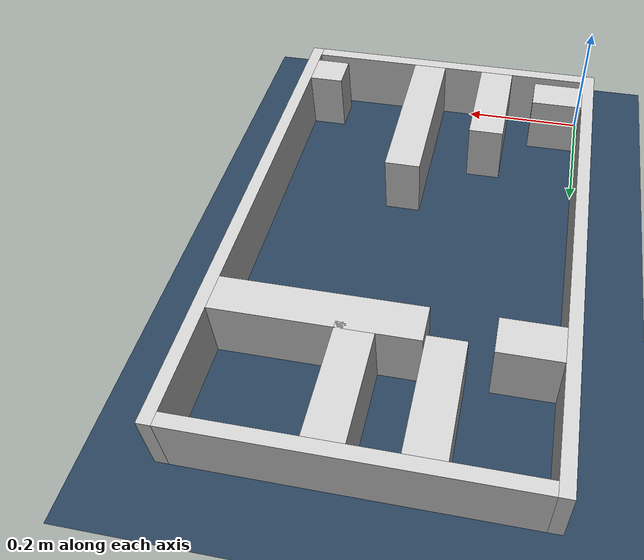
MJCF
<?xml version="1.0" ?>
<mujoco model="generated_real_template">
  <compiler angle="degree"/>
  <option timestep="0.002" integrator="implicitfast" iterations="100" cone="elliptic"/>
  <default>
    <geom density="1"/>
  </default>
  <asset>
    <texture builtin="gradient" height="3072" rgb1="0.3 0.5 0.7" rgb2="0 0 0" type="skybox" width="512"/>
    <texture builtin="checker" height="300" mark="edge" markrgb="0.8 0.8 0.8" name="groundplane" rgb1="0.2 0.3 0.4" rgb2="0.1 0.2 0.3" type="2d" width="300"/>
    <material name="groundplane" reflectance="0.2" texrepeat="5 5" texture="groundplane" texuniform="true"/>
  </asset>
  <worldbody>
    <light dir="0 0 -1" directional="true" pos="0 0 1.5"/>
    <geom name="floor" type="plane" condim="4" friction="0.5 0.005 0.001" material="groundplane" size="0 0 0.05"/>
    <body name="walls">
      <geom name="wall_boundary_left" type="box" condim="4" friction="1.0 0.005 0.0001" rgba="0.8 0.8 0.8 1" pos="-0.010000 0.387500 0.050000" euler="0 0 0.000000" size="0.010000 0.407500 0.050000"/>
      <geom name="wall_boundary_right" type="box" condim="4" friction="1.0 0.005 0.0001" rgba="0.8 0.8 0.8 1" pos="0.500000 0.387500 0.050000" euler="0 0 0.000000" size="0.010000 0.407500 0.050000"/>
      <geom name="wall_boundary_bottom" type="box" condim="4" friction="1.0 0.005 0.0001" rgba="0.8 0.8 0.8 1" pos="0.245000 -0.010000 0.050000" euler="0 0 0.000000" size="0.245000 0.010000 0.050000"/>
      <geom name="wall_boundary_top" type="box" condim="4" friction="1.0 0.005 0.0001" rgba="0.8 0.8 0.8 1" pos="0.245000 0.785000 0.050000" euler="0 0 0.000000" size="0.245000 0.010000 0.050000"/>
      <geom name="wall_inner_1_1" type="box" condim="4" friction="1.0 0.005 0.0001" rgba="0.8 0.8 0.8 1" pos="0.042611 0.046191 0.050000" euler="0 0 0.000000" size="0.042611 0.028500 0.050000"/>
      <geom name="wall_inner_1_2" type="box" condim="4" friction="1.0 0.005 0.0001" rgba="0.8 0.8 0.8 1" pos="0.461478 0.046191 0.050000" euler="0 0 0.000000" size="0.028522 0.028500 0.050000"/>
      <geom name="wall_inner_2_1" type="box" condim="4" friction="1.0 0.005 0.0001" rgba="0.8 0.8 0.8 1" pos="0.046412 0.583916 0.050000" euler="0 0 0.000000" size="0.046412 0.028500 0.050000"/>
      <geom name="wall_inner_2_2" type="box" condim="4" friction="1.0 0.005 0.0001" rgba="0.8 0.8 0.8 1" pos="0.338638 0.583916 0.050000" euler="0 0 0.000000" size="0.151362 0.028500 0.050000"/>
      <geom name="wall_inner_3_1" type="box" condim="4" friction="1.0 0.005 0.0001" rgba="0.8 0.8 0.8 1" pos="0.156542 0.085384 0.050000" euler="0 0 90.000000" size="0.085384 0.028500 0.050000"/>
      <geom name="wall_inner_3_2" type="box" condim="4" friction="1.0 0.005 0.0001" rgba="0.8 0.8 0.8 1" pos="0.156542 0.688705 0.050000" euler="0 0 90.000000" size="0.086295 0.028500 0.050000"/>
      <geom name="wall_inner_4_1" type="box" condim="4" friction="1.0 0.005 0.0001" rgba="0.8 0.8 0.8 1" pos="0.280662 0.138713 0.050000" euler="0 0 90.000000" size="0.138713 0.028500 0.050000"/>
      <geom name="wall_inner_4_2" type="box" condim="4" friction="1.0 0.005 0.0001" rgba="0.8 0.8 0.8 1" pos="0.280662 0.688470 0.050000" euler="0 0 90.000000" size="0.086530 0.028500 0.050000"/>
    </body>
  </worldbody>
</mujoco>
